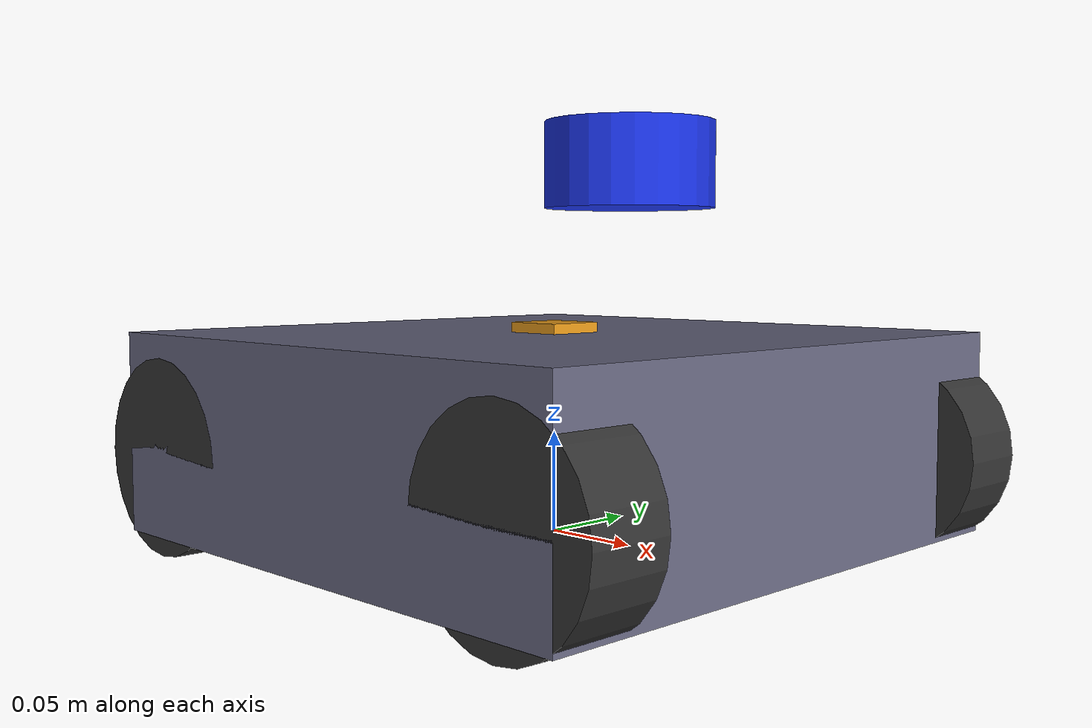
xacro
<?xml version="1.0"?>
<robot name="agv" xmlns:xacro="http://ros.org/wiki/xacro">

  <!-- Ground-projected base frame published below the physical chassis. -->
  <link name="base_footprint"/>
  <joint name="base_footprint_to_base_link" type="fixed">
    <parent link="base_footprint"/>
    <child link="base_link"/>
    <origin xyz="0 0 0" rpy="0 0 0"/>
  </joint>

  <!-- Base chassis (visual + collision) -->
  <link name="base_link">
    <visual>
      <origin xyz="0 0 0.05" rpy="0 0 0"/>
      <geometry>
        <box size="0.30 0.30 0.10"/>
      </geometry>
      <material name="chassis">
        <color rgba="0.4 0.4 0.5 1.0"/>
      </material>
    </visual>
    <collision>
      <origin xyz="0 0 0.05" rpy="0 0 0"/>
      <geometry>
        <box size="0.30 0.30 0.10"/>
      </geometry>
    </collision>
    <inertial>
      <origin xyz="0 0 0.05" rpy="0 0 0"/>
      <mass value="8.0"/>
      <inertia ixx="0.1" ixy="0" ixz="0" iyy="0.1" iyz="0" izz="0.15"/>
    </inertial>
  </link>

  <!-- RPLIDAR A1M8 (frame: laser) -->
  <joint name="base_to_laser" type="fixed">
    <parent link="base_link"/>
    <child link="laser"/>
    <origin xyz="0.05 0 0.18" rpy="0 0 0"/>
  </joint>
  <link name="laser">
    <visual>
      <origin xyz="0 0 0" rpy="0 0 0"/>
      <geometry>
        <cylinder length="0.04" radius="0.04"/>
      </geometry>
      <material name="lidar">
        <color rgba="0.1 0.2 0.9 1.0"/>
      </material>
    </visual>
    <inertial>
      <mass value="0.2"/>
      <inertia ixx="0.001" ixy="0" ixz="0" iyy="0.001" iyz="0" izz="0.001"/>
    </inertial>
  </link>

  <!-- BNO055 IMU (frame: base_imu) -->
  <joint name="base_to_imu" type="fixed">
    <parent link="base_link"/>
    <child link="base_imu"/>
    <origin xyz="0 0 0.10" rpy="0 0 0"/>
  </joint>
  <link name="base_imu">
    <visual>
      <origin xyz="0 0 0" rpy="0 0 0"/>
      <geometry>
        <box size="0.03 0.03 0.01"/>
      </geometry>
      <material name="imu">
        <color rgba="0.9 0.6 0.1 1.0"/>
      </material>
    </visual>
    <inertial>
      <mass value="0.01"/>
      <inertia ixx="0.0001" ixy="0" ixz="0" iyy="0.0001" iyz="0" izz="0.0001"/>
    </inertial>
  </link>

  <!-- 4 mecanum wheels (visual only — collision ignored; chassis box suffices) -->
  <xacro:macro name="wheel" params="name x y">
    <joint name="base_to_${name}" type="fixed">
      <parent link="base_link"/>
      <child link="${name}"/>
      <origin xyz="${x} ${y} 0.04" rpy="0 0 0"/>
    </joint>
    <link name="${name}">
      <visual>
        <origin xyz="0 0 0" rpy="1.5708 0 0"/>
        <geometry>
          <cylinder length="0.04" radius="0.0485"/>
        </geometry>
        <material name="wheel">
          <color rgba="0.2 0.2 0.2 1.0"/>
        </material>
      </visual>
      <inertial>
        <mass value="0.3"/>
        <inertia ixx="0.001" ixy="0" ixz="0" iyy="0.001" iyz="0" izz="0.001"/>
      </inertial>
    </link>
  </xacro:macro>

  <xacro:wheel name="wheel_fl" x=" 0.12"  y=" 0.13"/>
  <xacro:wheel name="wheel_fr" x=" 0.12"  y="-0.13"/>
  <xacro:wheel name="wheel_rl" x="-0.12"  y=" 0.13"/>
  <xacro:wheel name="wheel_rr" x="-0.12"  y="-0.13"/>

</robot>
